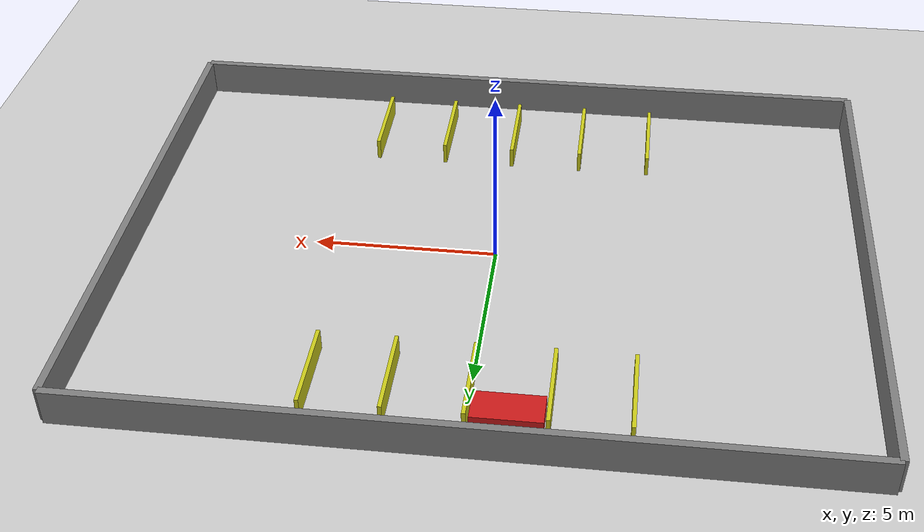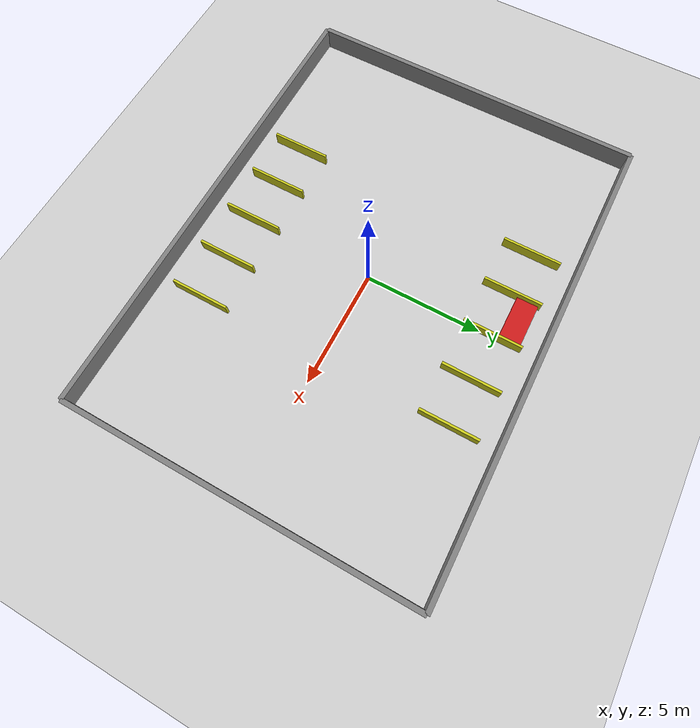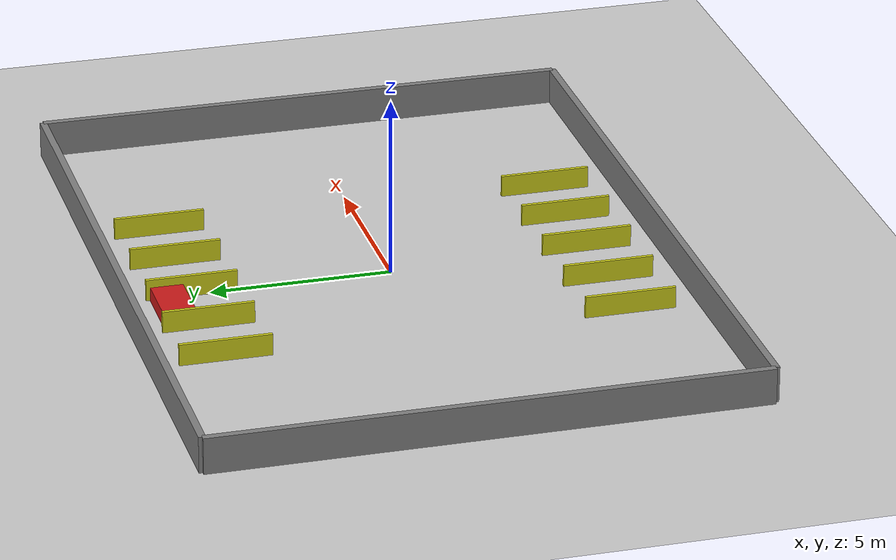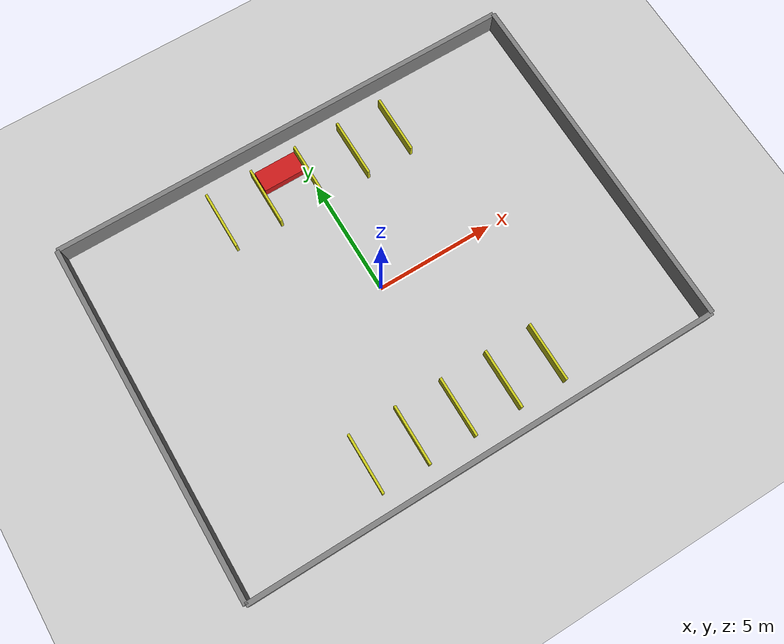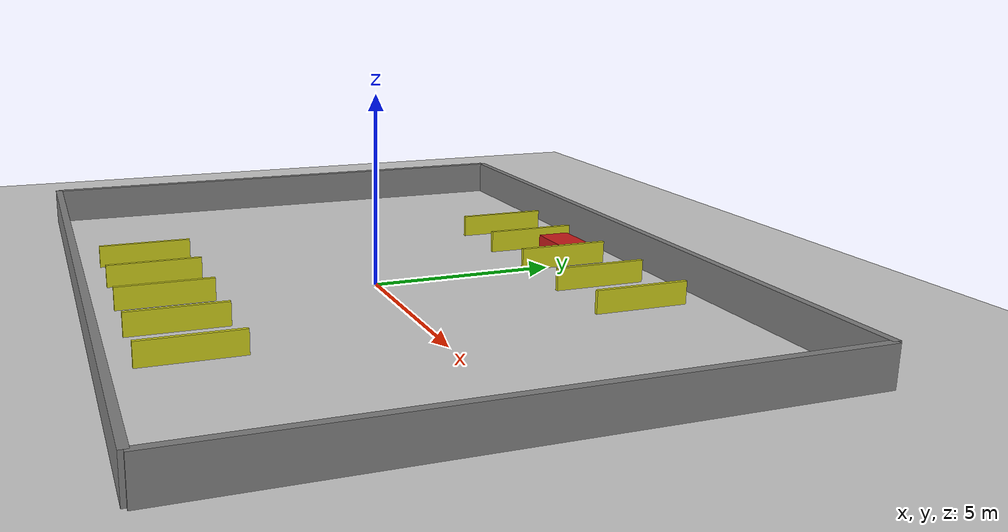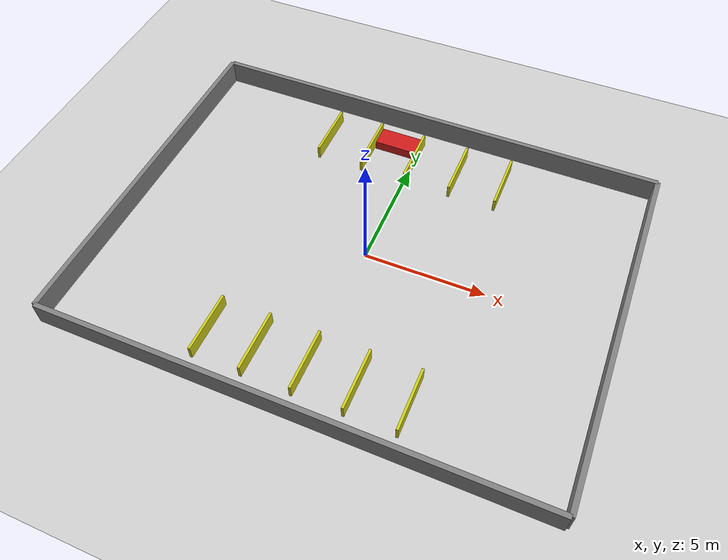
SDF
<?xml version="1.0"?>
<sdf version="1.9">
  <world name="parking_lot">

    <!-- ── Gz Harmonic Required System Plugins ──────────────────── -->
    <plugin filename="gz-sim-physics-system"
            name="gz::sim::systems::Physics"/>
    <plugin filename="gz-sim-user-commands-system"
            name="gz::sim::systems::UserCommands"/>
    <plugin filename="gz-sim-scene-broadcaster-system"
            name="gz::sim::systems::SceneBroadcaster"/>
    <!-- Sensors system enables lidar, camera, etc. simulation -->
    <plugin filename="gz-sim-sensors-system"
            name="gz::sim::systems::Sensors"/>

    <!-- ── Physics ─────────────────────────────────────────────── -->
    <physics name="default_physics" type="ignored">
      <max_step_size>0.001</max_step_size>
      <real_time_factor>1.0</real_time_factor>
      <real_time_update_rate>1000</real_time_update_rate>
    </physics>

    <!-- ── Lighting (explicit — not model://sun) ────────────────── -->
    <light name="sun" type="directional">
      <cast_shadows>true</cast_shadows>
      <pose>0 0 10 0 0 0</pose>
      <diffuse>0.8 0.8 0.8 1</diffuse>
      <specular>0.2 0.2 0.2 1</specular>
      <attenuation>
        <range>1000</range>
        <constant>0.9</constant>
        <linear>0.01</linear>
        <quadratic>0.001</quadratic>
      </attenuation>
      <direction>-0.5 0.1 -0.9</direction>
    </light>

    <!-- ── Ground Plane (explicit — not model://ground_plane) ───── -->
    <model name="ground_plane">
      <static>true</static>
      <link name="link">
        <collision name="collision">
          <geometry>
            <plane>
              <normal>0 0 1</normal>
              <size>100 100</size>
            </plane>
          </geometry>
        </collision>
        <visual name="visual">
          <geometry>
            <plane>
              <normal>0 0 1</normal>
              <size>100 100</size>
            </plane>
          </geometry>
          <material>
            <ambient>0.8 0.8 0.8 1</ambient>
            <diffuse>0.8 0.8 0.8 1</diffuse>
            <specular>0.8 0.8 0.8 1</specular>
          </material>
        </visual>
      </link>
    </model>

    <!-- North wall -->
    <model name="wall_north">
      <static>true</static>
      <pose>0 7.5 0.5  0 0 0</pose>
      <link name="link">
        <collision name="col">
          <geometry><box><size>20 0.2 1.0</size></box></geometry>
        </collision>
        <visual name="vis">
          <geometry><box><size>20 0.2 1.0</size></box></geometry>
          <material>
            <ambient>0.5 0.5 0.5 1</ambient>
            <diffuse>0.5 0.5 0.5 1</diffuse>
          </material>
        </visual>
      </link>
    </model>

    <!-- South wall -->
    <model name="wall_south">
      <static>true</static>
      <pose>0 -7.5 0.5  0 0 0</pose>
      <link name="link">
        <collision name="col">
          <geometry><box><size>20 0.2 1.0</size></box></geometry>
        </collision>
        <visual name="vis">
          <geometry><box><size>20 0.2 1.0</size></box></geometry>
          <material><ambient>0.5 0.5 0.5 1</ambient><diffuse>0.5 0.5 0.5 1</diffuse></material>
        </visual>
      </link>
    </model>

    <!-- East wall -->
    <model name="wall_east">
      <static>true</static>
      <pose>10 0 0.5  0 0 0</pose>
      <link name="link">
        <collision name="col">
          <geometry><box><size>0.2 15 1.0</size></box></geometry>
        </collision>
        <visual name="vis">
          <geometry><box><size>0.2 15 1.0</size></box></geometry>
          <material><ambient>0.5 0.5 0.5 1</ambient><diffuse>0.5 0.5 0.5 1</diffuse></material>
        </visual>
      </link>
    </model>

    <!-- West wall -->
    <model name="wall_west">
      <static>true</static>
      <pose>-10 0 0.5  0 0 0</pose>
      <link name="link">
        <collision name="col">
          <geometry><box><size>0.2 15 1.0</size></box></geometry>
        </collision>
        <visual name="vis">
          <geometry><box><size>0.2 15 1.0</size></box></geometry>
          <material><ambient>0.5 0.5 0.5 1</ambient><diffuse>0.5 0.5 0.5 1</diffuse></material>
        </visual>
      </link>
    </model>

    <model name="divider_a0">
      <static>true</static>
      <pose>-4.0 5.5 0.3  0 0 0</pose>
      <link name="link">
        <collision name="col">
          <geometry><box><size>0.1 2.5 0.6</size></box></geometry>
        </collision>
        <visual name="vis">
          <geometry><box><size>0.1 2.5 0.6</size></box></geometry>
          <material><ambient>0.8 0.8 0.1 1</ambient><diffuse>0.8 0.8 0.1 1</diffuse></material>
        </visual>
      </link>
    </model>

    <model name="divider_a1">
      <static>true</static>
      <pose>-2.0 5.5 0.3  0 0 0</pose>
      <link name="link">
        <collision name="col">
          <geometry><box><size>0.1 2.5 0.6</size></box></geometry>
        </collision>
        <visual name="vis">
          <geometry><box><size>0.1 2.5 0.6</size></box></geometry>
          <material><ambient>0.8 0.8 0.1 1</ambient><diffuse>0.8 0.8 0.1 1</diffuse></material>
        </visual>
      </link>
    </model>

    <model name="divider_a2">
      <static>true</static>
      <pose>0.0 5.5 0.3  0 0 0</pose>
      <link name="link">
        <collision name="col">
          <geometry><box><size>0.1 2.5 0.6</size></box></geometry>
        </collision>
        <visual name="vis">
          <geometry><box><size>0.1 2.5 0.6</size></box></geometry>
          <material><ambient>0.8 0.8 0.1 1</ambient><diffuse>0.8 0.8 0.1 1</diffuse></material>
        </visual>
      </link>
    </model>

    <model name="divider_a3">
      <static>true</static>
      <pose>2.0 5.5 0.3  0 0 0</pose>
      <link name="link">
        <collision name="col">
          <geometry><box><size>0.1 2.5 0.6</size></box></geometry>
        </collision>
        <visual name="vis">
          <geometry><box><size>0.1 2.5 0.6</size></box></geometry>
          <material><ambient>0.8 0.8 0.1 1</ambient><diffuse>0.8 0.8 0.1 1</diffuse></material>
        </visual>
      </link>
    </model>

    <model name="divider_a4">
      <static>true</static>
      <pose>4.0 5.5 0.3  0 0 0</pose>
      <link name="link">
        <collision name="col">
          <geometry><box><size>0.1 2.5 0.6</size></box></geometry>
        </collision>
        <visual name="vis">
          <geometry><box><size>0.1 2.5 0.6</size></box></geometry>
          <material><ambient>0.8 0.8 0.1 1</ambient><diffuse>0.8 0.8 0.1 1</diffuse></material>
        </visual>
      </link>
    </model>

    <!-- ══════════════════════════════════════════════════════════
         ROW B — South side (5 slots)
    ═══════════════════════════════════════════════════════════════ -->

    <model name="divider_b0">
      <static>true</static>
      <pose>-4.0 -5.5 0.3  0 0 0</pose>
      <link name="link">
        <collision name="col">
          <geometry><box><size>0.1 2.5 0.6</size></box></geometry>
        </collision>
        <visual name="vis">
          <geometry><box><size>0.1 2.5 0.6</size></box></geometry>
          <material><ambient>0.8 0.8 0.1 1</ambient><diffuse>0.8 0.8 0.1 1</diffuse></material>
        </visual>
      </link>
    </model>

    <model name="divider_b1">
      <static>true</static>
      <pose>-2.0 -5.5 0.3  0 0 0</pose>
      <link name="link">
        <collision name="col">
          <geometry><box><size>0.1 2.5 0.6</size></box></geometry>
        </collision>
        <visual name="vis">
          <geometry><box><size>0.1 2.5 0.6</size></box></geometry>
          <material><ambient>0.8 0.8 0.1 1</ambient><diffuse>0.8 0.8 0.1 1</diffuse></material>
        </visual>
      </link>
    </model>

    <model name="divider_b2">
      <static>true</static>
      <pose>0.0 -5.5 0.3  0 0 0</pose>
      <link name="link">
        <collision name="col">
          <geometry><box><size>0.1 2.5 0.6</size></box></geometry>
        </collision>
        <visual name="vis">
          <geometry><box><size>0.1 2.5 0.6</size></box></geometry>
          <material><ambient>0.8 0.8 0.1 1</ambient><diffuse>0.8 0.8 0.1 1</diffuse></material>
        </visual>
      </link>
    </model>

    <model name="divider_b3">
      <static>true</static>
      <pose>2.0 -5.5 0.3  0 0 0</pose>
      <link name="link">
        <collision name="col">
          <geometry><box><size>0.1 2.5 0.6</size></box></geometry>
        </collision>
        <visual name="vis">
          <geometry><box><size>0.1 2.5 0.6</size></box></geometry>
          <material><ambient>0.8 0.8 0.1 1</ambient><diffuse>0.8 0.8 0.1 1</diffuse></material>
        </visual>
      </link>
    </model>

    <model name="divider_b4">
      <static>true</static>
      <pose>4.0 -5.5 0.3  0 0 0</pose>
      <link name="link">
        <collision name="col">
          <geometry><box><size>0.1 2.5 0.6</size></box></geometry>
        </collision>
        <visual name="vis">
          <geometry><box><size>0.1 2.5 0.6</size></box></geometry>
          <material><ambient>0.8 0.8 0.1 1</ambient><diffuse>0.8 0.8 0.1 1</diffuse></material>
        </visual>
      </link>
    </model>

    <model name="parked_car_a2">
      <static>true</static>
      <pose>-1.0 6.2 0.2  0 0 0</pose>
      <link name="link">
        <collision name="col">
          <geometry><box><size>1.8 0.9 0.4</size></box></geometry>
        </collision>
        <visual name="vis">
          <geometry><box><size>1.8 0.9 0.4</size></box></geometry>
          <material><ambient>0.8 0.1 0.1 1</ambient><diffuse>0.8 0.1 0.1 1</diffuse></material>
        </visual>
      </link>
    </model>

  </world>
</sdf>
